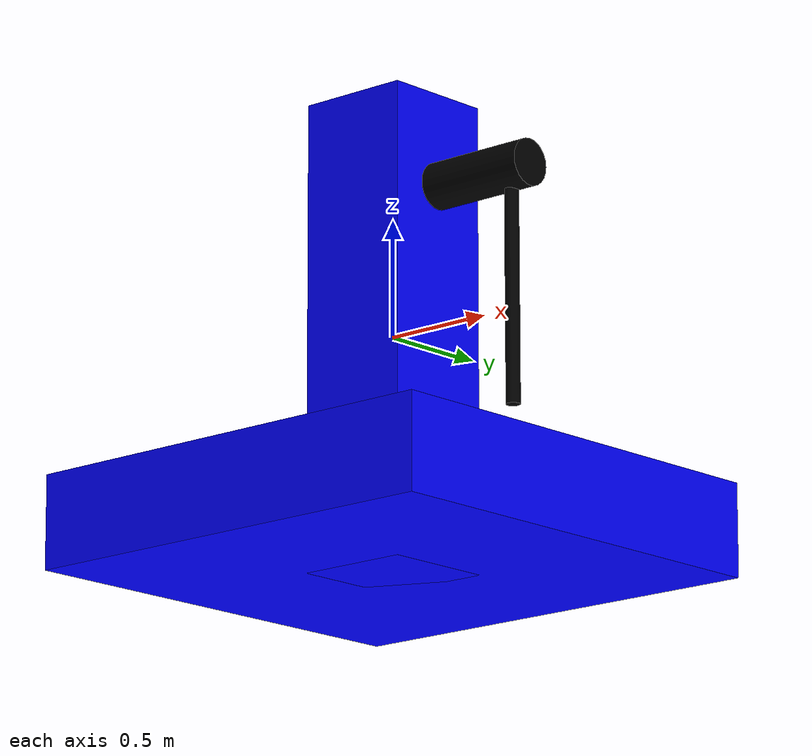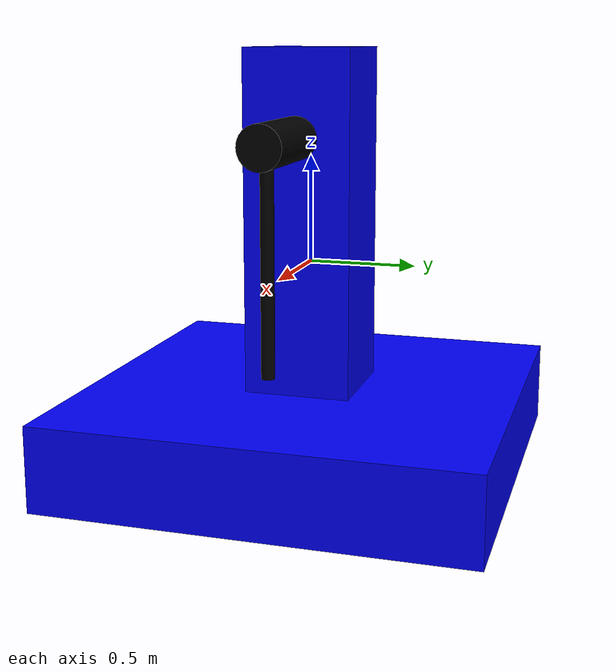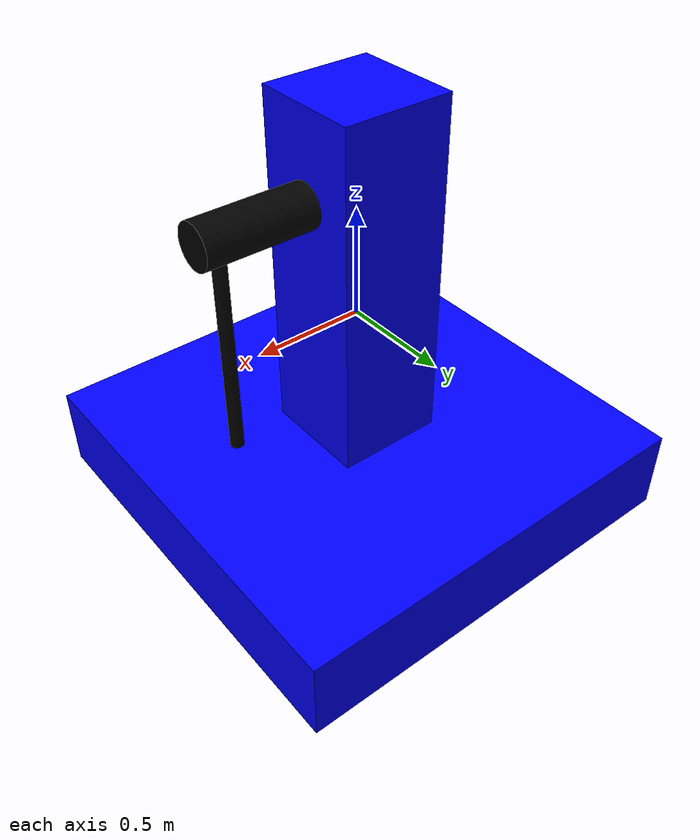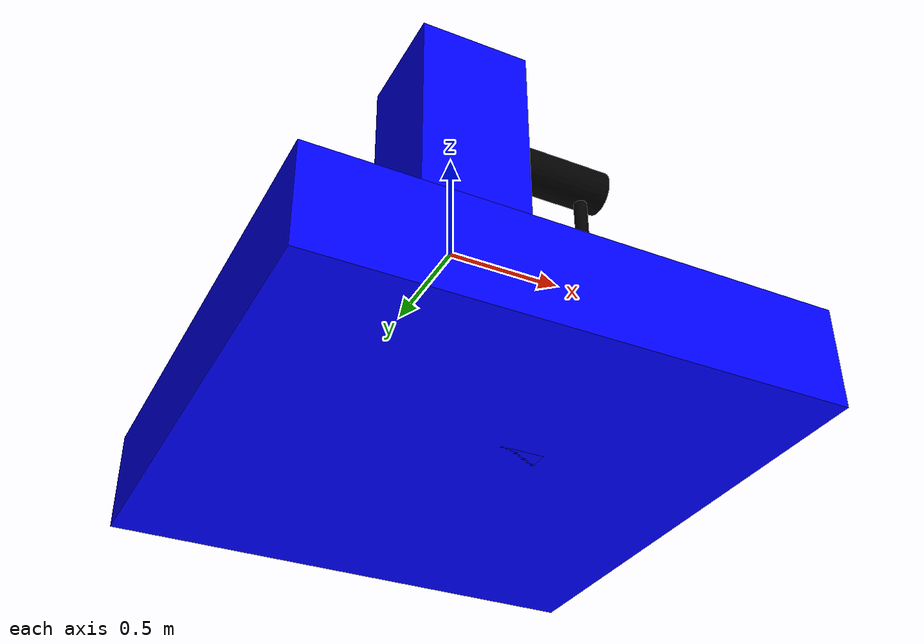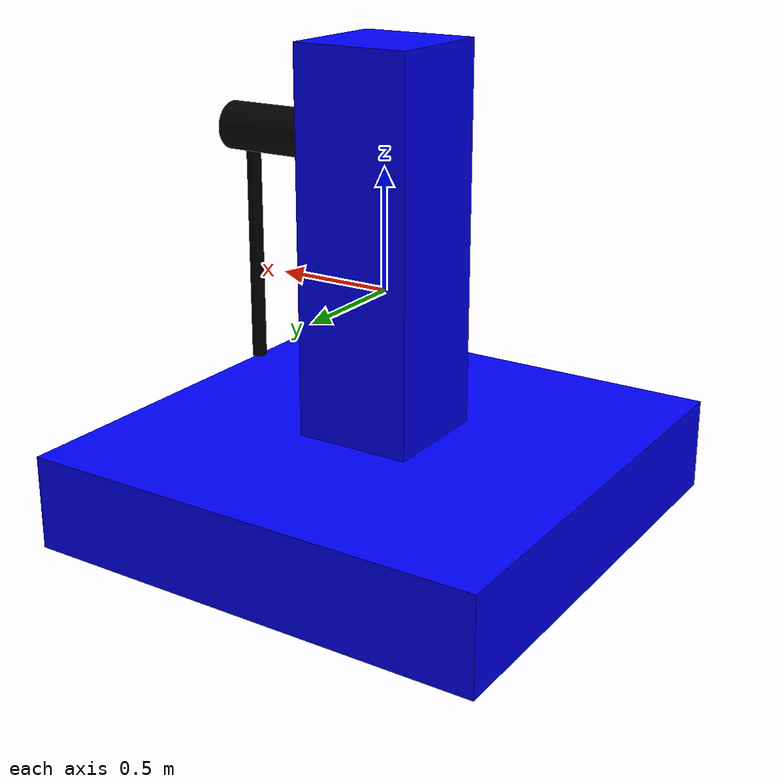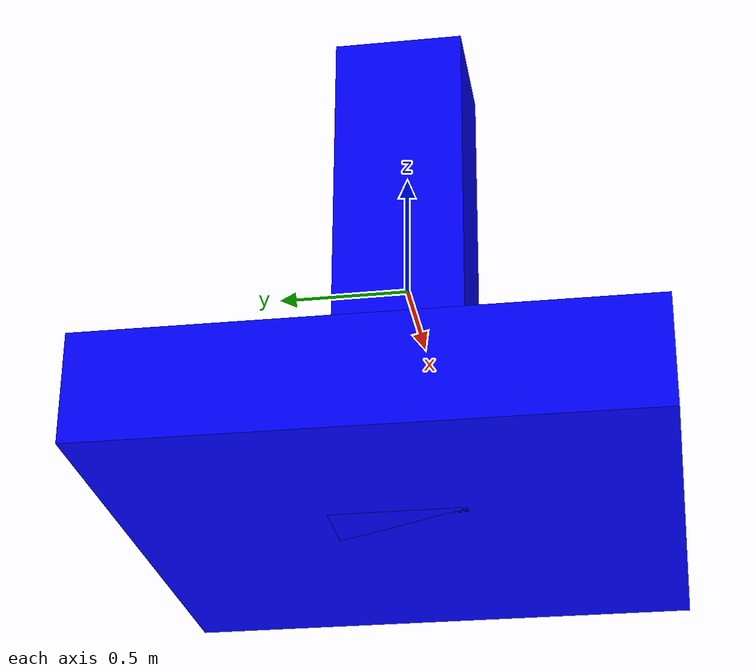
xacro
<?xml version="1.0"?>

<robot name="buff" xmlns:xacro="http://www.ros.org/wiki/xacro">

    <gazebo>
        <plugin name="ros_control" filename="libgazebo_ros_control.so">
            <robotNamespace>/</robotNamespace>
        </plugin>
    </gazebo>

    <link name="base_link">
        <visual>
            <geometry>
                <box size="0.5 0.5 2"/>
            </geometry>
            <material name="blue">
                <color rgba="0 0 1 1"/>
            </material>
        </visual>
        <collision>
            <geometry>
                <box size="0.5 0.5 2"/>
            </geometry>
        </collision>
        <inertial>
            <mass value="10.0"/>
            <inertia ixx="3.542" ixy="0.0" ixz="0.0" iyy="3.542" iyz="0.0" izz="0.417"/>
        </inertial>
    </link>

    <link name="base">
        <visual>
            <geometry>
                <box size="2 2 0.4"/>
            </geometry>
            <material name="blue">
                <color rgba="0 0 1 1"/>
            </material>
        </visual>
        <collision>
            <geometry>
                <box size="2 2 0.4"/>
            </geometry>
        </collision>
        <inertial>
            <mass value="10.0"/>
            <inertia ixx="3.333333" ixy="0" ixz="0" iyy="3.333333" iyz="0" izz="6.666667"/>
        </inertial>
    </link>

    <link name="wheel">
        <visual>
            <geometry>
                <cylinder length="0.5" radius="0.1"/>
            </geometry>
            <material name="white">
                <color rgba="0 0 0 1"/>
            </material>
        </visual>
        <collision>
            <geometry>
                <cylinder length="0.5" radius="0.1"/>
            </geometry>
        </collision>
        <inertial>
            <mass value="0.005"/>
            <inertia ixx="0.0012083" ixy="0.0" ixz="0.0" iyy="0.0012083" iyz="0.0" izz="0.0003333"/>
        </inertial>
    </link>

    <link name="stick">
        <visual>
            <geometry>
                <cylinder length="1" radius="0.03"/>
            </geometry>
            <material name="black">
                <color rgba="0 0 0 1"/>
            </material>
        </visual>
        <collision>
            <geometry>
                <cylinder length="1" radius="0.03"/>
            </geometry>
        </collision>
        <inertial>
            <mass value="0.001"/>
            <inertia ixx="0.0004017" ixy="0" ixz="0" iyy="0.0004017" iyz="0" izz="0.000006"/>
        </inertial>
    </link>

    <joint name="base_joint" type="fixed">
        <parent link="base_link"/>
        <child link="base"/>
        <origin xyz="0 0 -0.8" rpy="0 0 0"/>
    </joint>

    <joint name="wheel_joint" type="continuous">
        <parent link="base_link"/>
        <child link="wheel"/>
        <origin xyz="0.5 0 0.6" rpy="0 1.57 0"/>
        <axis xyz="0 0 1" />
    </joint>

    <joint name="stick_joint" type="fixed">
        <parent link="wheel"/>
        <child link="stick"/>
        <origin xyz="0.5 0 0.15" rpy="0 1.57 0"/>
    </joint>

    <transmission name="trans">
        <type>transmission_interface/SimpleTransmission</type>
        <actuator name="motors">
            <hardwareInterface>hardware_interface/EffortJointInterface</hardwareInterface>
            <mechanicalReduction>1.0</mechanicalReduction>
        </actuator>
        <joint name="wheel_joint">
            <hardwareInterface>hardware_interface/EffortJointInterface</hardwareInterface>
        </joint>
    </transmission>

    <gazebo reference="base_link">
        <material>Gazebo/Blue</material>
    </gazebo>

    <gazebo reference="wheel">
        <material>Gazebo/White</material>
    </gazebo>

    <gazebo reference="stick">
        <material>Gazebo/Black</material>
    </gazebo>

    <gazebo reference="base">
        <material>Gazebo/Blue</material>
    </gazebo>
</robot>
